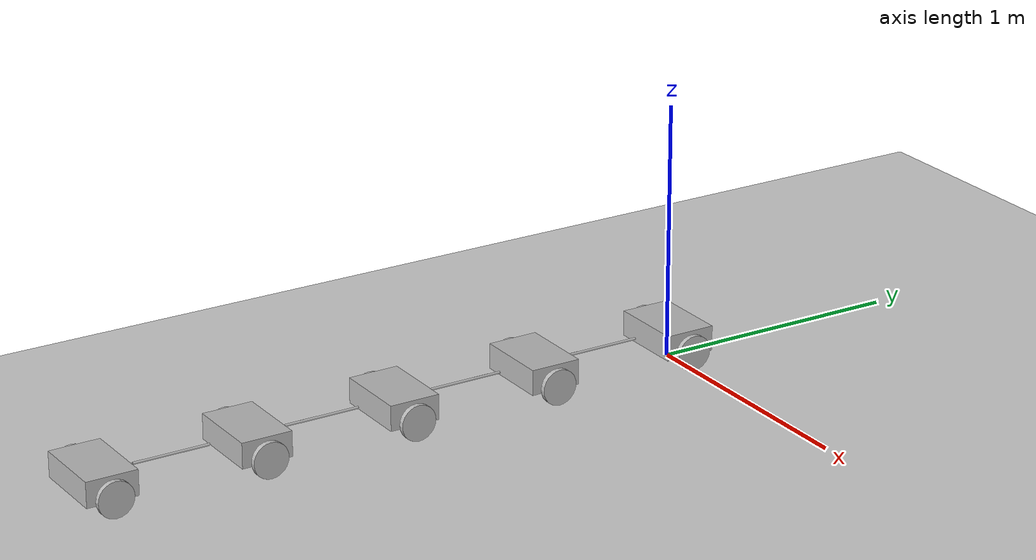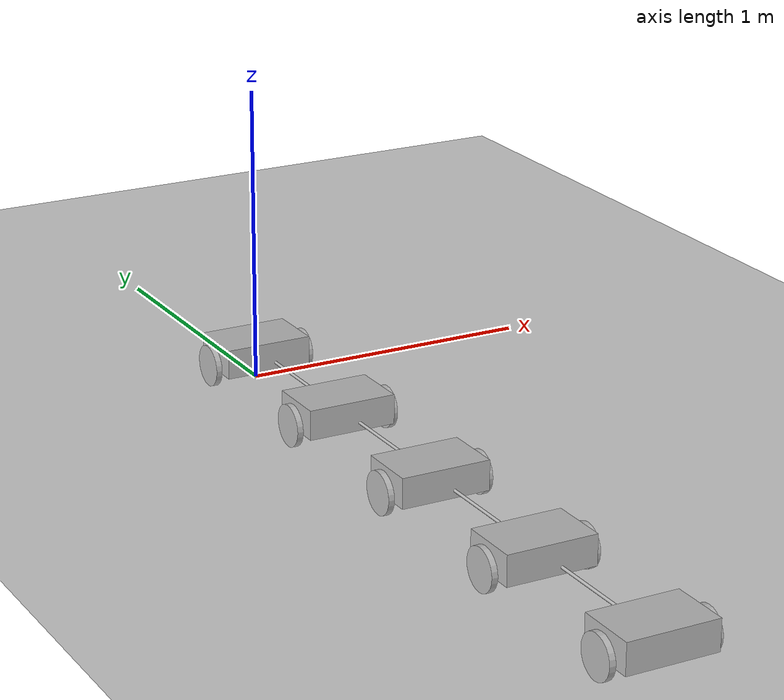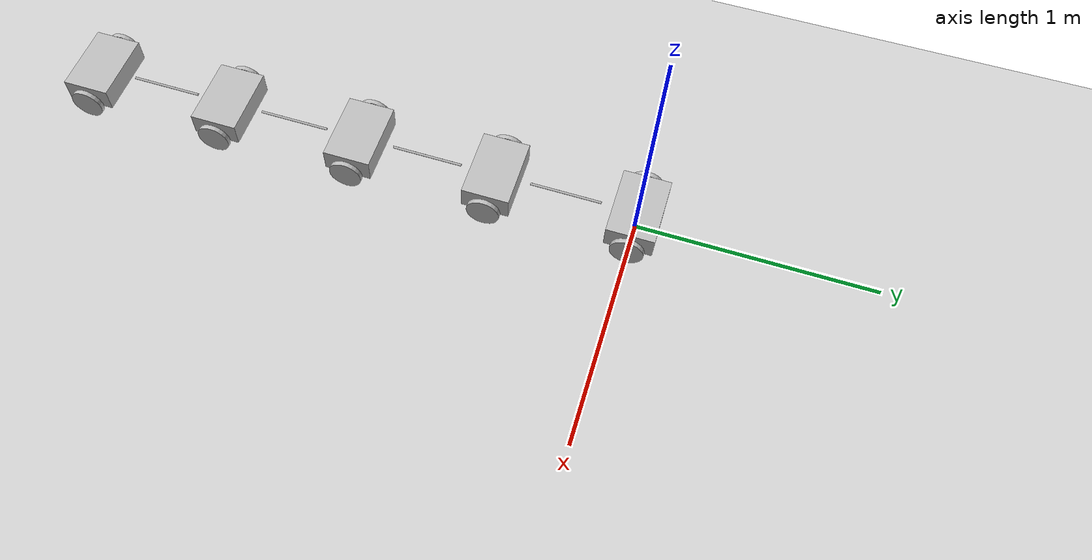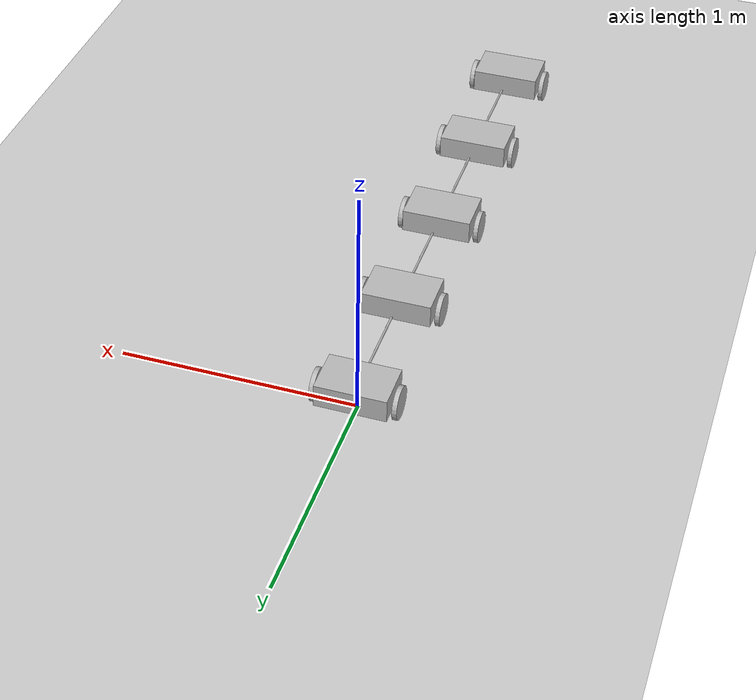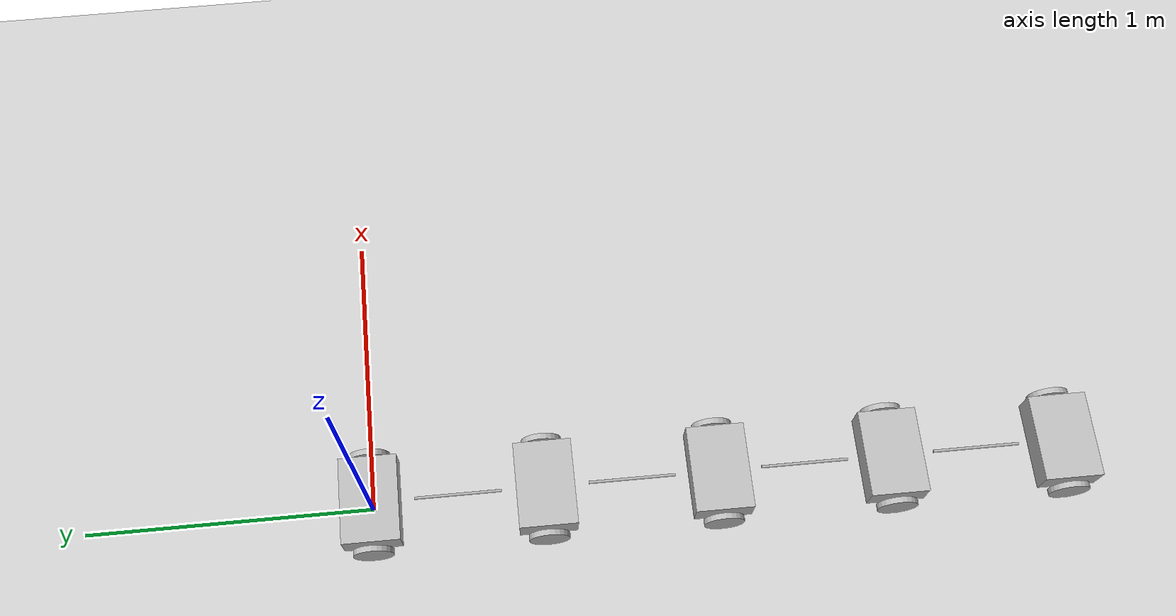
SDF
<sdf version='1.5'>
  <world name='default'>
    <light name='sun' type='directional'>
      <cast_shadows>1</cast_shadows>
      <pose>0 0 10 0 -0 0</pose>
      <diffuse>0.8 0.8 0.8 1</diffuse>
      <specular>0.2 0.2 0.2 1</specular>
      <attenuation>
        <range>1000</range>
        <constant>0.9</constant>
        <linear>0.01</linear>
        <quadratic>0.001</quadratic>
      </attenuation>
      <direction>-0.5 0.1 -0.9</direction>
    </light>
    <model name='ground_plane'>
      <static>1</static>
      <link name='link'>
        <collision name='collision'>
          <geometry>
            <plane>
              <normal>0 0 1</normal>
              <size>100 100</size>
            </plane>
          </geometry>
          <surface>
            <friction>
              <ode>
                <mu>100</mu>
                <mu2>50</mu2>
              </ode>
            </friction>
            <contact>
              <ode/>
            </contact>
            <bounce/>
          </surface>
          <max_contacts>10</max_contacts>
        </collision>
        <visual name='visual'>
          <cast_shadows>0</cast_shadows>
          <geometry>
            <plane>
              <normal>0 0 1</normal>
              <size>100 100</size>
            </plane>
          </geometry>
          <material>
            <script>
              <uri>file://media/materials/scripts/gazebo.material</uri>
              <name>Gazebo/Grey</name>
            </script>
          </material>
        </visual>
        <self_collide>0</self_collide>
        <kinematic>0</kinematic>
        <gravity>1</gravity>
      </link>
    </model>
    <physics type='ode'>
      <max_step_size>0.001</max_step_size>
      <real_time_factor>1</real_time_factor>
      <real_time_update_rate>1000</real_time_update_rate>
      <gravity>0 0 -9.8</gravity>
      <magnetic_field>5.5645e-06 2.28758e-05 -4.23884e-05</magnetic_field>
    </physics>
    <scene>
      <ambient>0.4 0.4 0.4 1</ambient>
      <background>0.7 0.7 0.7 1</background>
      <shadows>1</shadows>
    </scene>
    <model name='train'>
      <link name='car_1::chassis'>
        <pose>0 0 0.1 0 -0 0</pose>
        <inertial>
          <mass>50</mass>
          <inertia>
            <ixx>1</ixx>
            <ixy>0</ixy>
            <ixz>0</ixz>
            <iyy>1</iyy>
            <iyz>0</iyz>
            <izz>1</izz>
          </inertia>
        </inertial>
        <collision name='collision'>
          <geometry>
            <box>
              <size>0.3 0.2 0.1</size>
            </box>
          </geometry>
          <max_contacts>10</max_contacts>
          <surface>
            <contact>
              <ode/>
            </contact>
            <bounce/>
            <friction>
              <ode/>
            </friction>
          </surface>
        </collision>
        <visual name='visual'>
          <geometry>
            <box>
              <size>0.3 0.2 0.1</size>
            </box>
          </geometry>
        </visual>
        <self_collide>0</self_collide>
        <kinematic>0</kinematic>
        <gravity>1</gravity>
      </link>
      <link name='car_1::left_wheel'>
        <pose>-0.17 0 0.07 0 1.5707 0</pose>
        <inertial>
          <mass>10</mass>
          <inertia>
            <ixx>1</ixx>
            <ixy>0</ixy>
            <ixz>0</ixz>
            <iyy>1</iyy>
            <iyz>0</iyz>
            <izz>1</izz>
          </inertia>
        </inertial>
        <collision name='collision'>
          <geometry>
            <cylinder>
              <radius>0.07</radius>
              <length>0.02</length>
            </cylinder>
          </geometry>
          <surface>
            <friction>
              <ode>
                <mu>100000</mu>
                <mu2>100000</mu2>
                <slip1>0</slip1>
                <slip2>0</slip2>
              </ode>
            </friction>
            <contact>
              <ode/>
            </contact>
            <bounce/>
          </surface>
          <max_contacts>10</max_contacts>
        </collision>
        <visual name='visual'>
          <geometry>
            <cylinder>
              <radius>0.07</radius>
              <length>0.02</length>
            </cylinder>
          </geometry>
        </visual>
        <self_collide>0</self_collide>
        <kinematic>0</kinematic>
        <gravity>1</gravity>
      </link>
      <link name='car_1::right_wheel'>
        <pose>0.17 0 0.07 0 1.5707 0</pose>
        <inertial>
          <mass>10</mass>
          <inertia>
            <ixx>1</ixx>
            <ixy>0</ixy>
            <ixz>0</ixz>
            <iyy>1</iyy>
            <iyz>0</iyz>
            <izz>1</izz>
          </inertia>
        </inertial>
        <collision name='collision'>
          <geometry>
            <cylinder>
              <radius>0.07</radius>
              <length>0.02</length>
            </cylinder>
          </geometry>
          <surface>
            <friction>
              <ode>
                <mu>100000</mu>
                <mu2>100000</mu2>
                <slip1>0</slip1>
                <slip2>0</slip2>
              </ode>
            </friction>
            <contact>
              <ode/>
            </contact>
            <bounce/>
          </surface>
          <max_contacts>10</max_contacts>
        </collision>
        <visual name='visual'>
          <geometry>
            <cylinder>
              <radius>0.07</radius>
              <length>0.02</length>
            </cylinder>
          </geometry>
        </visual>
        <self_collide>0</self_collide>
        <kinematic>0</kinematic>
        <gravity>1</gravity>
      </link>
      <joint name='car_1::left_wheel_joint' type='revolute'>
        <child>car_1::left_wheel</child>
        <parent>car_1::chassis</parent>
        <axis>
          <xyz>-1 0 0</xyz>
          <use_parent_model_frame>1</use_parent_model_frame>
          <limit>
            <lower>-1e+16</lower>
            <upper>1e+16</upper>
          </limit>
          <dynamics>
            <spring_reference>0</spring_reference>
            <spring_stiffness>0</spring_stiffness>
          </dynamics>
        </axis>
      </joint>
      <joint name='car_1::right_wheel_joint' type='revolute'>
        <child>car_1::right_wheel</child>
        <parent>car_1::chassis</parent>
        <axis>
          <xyz>-1 0 0</xyz>
          <use_parent_model_frame>1</use_parent_model_frame>
          <limit>
            <lower>-1e+16</lower>
            <upper>1e+16</upper>
          </limit>
          <dynamics>
            <spring_reference>0</spring_reference>
            <spring_stiffness>0</spring_stiffness>
          </dynamics>
        </axis>
      </joint>
      <link name='car_2::chassis'>
        <pose>0 -0.6 0.1 0 -0 0</pose>
        <inertial>
          <mass>50</mass>
          <inertia>
            <ixx>1</ixx>
            <ixy>0</ixy>
            <ixz>0</ixz>
            <iyy>1</iyy>
            <iyz>0</iyz>
            <izz>1</izz>
          </inertia>
        </inertial>
        <collision name='collision'>
          <geometry>
            <box>
              <size>0.3 0.2 0.1</size>
            </box>
          </geometry>
          <max_contacts>10</max_contacts>
          <surface>
            <contact>
              <ode/>
            </contact>
            <bounce/>
            <friction>
              <ode/>
            </friction>
          </surface>
        </collision>
        <visual name='visual'>
          <geometry>
            <box>
              <size>0.3 0.2 0.1</size>
            </box>
          </geometry>
        </visual>
        <self_collide>0</self_collide>
        <kinematic>0</kinematic>
        <gravity>1</gravity>
      </link>
      <link name='car_2::left_wheel'>
        <pose>-0.17 -0.6 0.07 0 1.5707 0</pose>
        <inertial>
          <mass>10</mass>
          <inertia>
            <ixx>1</ixx>
            <ixy>0</ixy>
            <ixz>0</ixz>
            <iyy>1</iyy>
            <iyz>0</iyz>
            <izz>1</izz>
          </inertia>
        </inertial>
        <collision name='collision'>
          <geometry>
            <cylinder>
              <radius>0.07</radius>
              <length>0.02</length>
            </cylinder>
          </geometry>
          <surface>
            <friction>
              <ode>
                <mu>100000</mu>
                <mu2>100000</mu2>
                <slip1>0</slip1>
                <slip2>0</slip2>
              </ode>
            </friction>
            <contact>
              <ode/>
            </contact>
            <bounce/>
          </surface>
          <max_contacts>10</max_contacts>
        </collision>
        <visual name='visual'>
          <geometry>
            <cylinder>
              <radius>0.07</radius>
              <length>0.02</length>
            </cylinder>
          </geometry>
        </visual>
        <self_collide>0</self_collide>
        <kinematic>0</kinematic>
        <gravity>1</gravity>
      </link>
      <link name='car_2::right_wheel'>
        <pose>0.17 -0.6 0.07 0 1.5707 0</pose>
        <inertial>
          <mass>10</mass>
          <inertia>
            <ixx>1</ixx>
            <ixy>0</ixy>
            <ixz>0</ixz>
            <iyy>1</iyy>
            <iyz>0</iyz>
            <izz>1</izz>
          </inertia>
        </inertial>
        <collision name='collision'>
          <geometry>
            <cylinder>
              <radius>0.07</radius>
              <length>0.02</length>
            </cylinder>
          </geometry>
          <surface>
            <friction>
              <ode>
                <mu>100000</mu>
                <mu2>100000</mu2>
                <slip1>0</slip1>
                <slip2>0</slip2>
              </ode>
            </friction>
            <contact>
              <ode/>
            </contact>
            <bounce/>
          </surface>
          <max_contacts>10</max_contacts>
        </collision>
        <visual name='visual'>
          <geometry>
            <cylinder>
              <radius>0.07</radius>
              <length>0.02</length>
            </cylinder>
          </geometry>
        </visual>
        <self_collide>0</self_collide>
        <kinematic>0</kinematic>
        <gravity>1</gravity>
      </link>
      <joint name='car_2::left_wheel_joint' type='revolute'>
        <child>car_2::left_wheel</child>
        <parent>car_2::chassis</parent>
        <axis>
          <xyz>-1 0 0</xyz>
          <use_parent_model_frame>1</use_parent_model_frame>
          <limit>
            <lower>-1e+16</lower>
            <upper>1e+16</upper>
          </limit>
          <dynamics>
            <spring_reference>0</spring_reference>
            <spring_stiffness>0</spring_stiffness>
          </dynamics>
        </axis>
      </joint>
      <joint name='car_2::right_wheel_joint' type='revolute'>
        <child>car_2::right_wheel</child>
        <parent>car_2::chassis</parent>
        <axis>
          <xyz>-1 0 0</xyz>
          <use_parent_model_frame>1</use_parent_model_frame>
          <limit>
            <lower>-1e+16</lower>
            <upper>1e+16</upper>
          </limit>
          <dynamics>
            <spring_reference>0</spring_reference>
            <spring_stiffness>0</spring_stiffness>
          </dynamics>
        </axis>
      </joint>
      <link name='car_3::chassis'>
        <pose>0 -1.2 0.1 0 -0 0</pose>
        <inertial>
          <mass>50</mass>
          <inertia>
            <ixx>1</ixx>
            <ixy>0</ixy>
            <ixz>0</ixz>
            <iyy>1</iyy>
            <iyz>0</iyz>
            <izz>1</izz>
          </inertia>
        </inertial>
        <collision name='collision'>
          <geometry>
            <box>
              <size>0.3 0.2 0.1</size>
            </box>
          </geometry>
          <max_contacts>10</max_contacts>
          <surface>
            <contact>
              <ode/>
            </contact>
            <bounce/>
            <friction>
              <ode/>
            </friction>
          </surface>
        </collision>
        <visual name='visual'>
          <geometry>
            <box>
              <size>0.3 0.2 0.1</size>
            </box>
          </geometry>
        </visual>
        <self_collide>0</self_collide>
        <kinematic>0</kinematic>
        <gravity>1</gravity>
      </link>
      <link name='car_3::left_wheel'>
        <pose>-0.17 -1.2 0.07 0 1.5707 0</pose>
        <inertial>
          <mass>10</mass>
          <inertia>
            <ixx>1</ixx>
            <ixy>0</ixy>
            <ixz>0</ixz>
            <iyy>1</iyy>
            <iyz>0</iyz>
            <izz>1</izz>
          </inertia>
        </inertial>
        <collision name='collision'>
          <geometry>
            <cylinder>
              <radius>0.07</radius>
              <length>0.02</length>
            </cylinder>
          </geometry>
          <surface>
            <friction>
              <ode>
                <mu>100000</mu>
                <mu2>100000</mu2>
                <slip1>0</slip1>
                <slip2>0</slip2>
              </ode>
            </friction>
            <contact>
              <ode/>
            </contact>
            <bounce/>
          </surface>
          <max_contacts>10</max_contacts>
        </collision>
        <visual name='visual'>
          <geometry>
            <cylinder>
              <radius>0.07</radius>
              <length>0.02</length>
            </cylinder>
          </geometry>
        </visual>
        <self_collide>0</self_collide>
        <kinematic>0</kinematic>
        <gravity>1</gravity>
      </link>
      <link name='car_3::right_wheel'>
        <pose>0.17 -1.2 0.07 0 1.5707 0</pose>
        <inertial>
          <mass>10</mass>
          <inertia>
            <ixx>1</ixx>
            <ixy>0</ixy>
            <ixz>0</ixz>
            <iyy>1</iyy>
            <iyz>0</iyz>
            <izz>1</izz>
          </inertia>
        </inertial>
        <collision name='collision'>
          <geometry>
            <cylinder>
              <radius>0.07</radius>
              <length>0.02</length>
            </cylinder>
          </geometry>
          <surface>
            <friction>
              <ode>
                <mu>100000</mu>
                <mu2>100000</mu2>
                <slip1>0</slip1>
                <slip2>0</slip2>
              </ode>
            </friction>
            <contact>
              <ode/>
            </contact>
            <bounce/>
          </surface>
          <max_contacts>10</max_contacts>
        </collision>
        <visual name='visual'>
          <geometry>
            <cylinder>
              <radius>0.07</radius>
              <length>0.02</length>
            </cylinder>
          </geometry>
        </visual>
        <self_collide>0</self_collide>
        <kinematic>0</kinematic>
        <gravity>1</gravity>
      </link>
      <joint name='car_3::left_wheel_joint' type='revolute'>
        <child>car_3::left_wheel</child>
        <parent>car_3::chassis</parent>
        <axis>
          <xyz>-1 0 0</xyz>
          <use_parent_model_frame>1</use_parent_model_frame>
          <limit>
            <lower>-1e+16</lower>
            <upper>1e+16</upper>
          </limit>
          <dynamics>
            <spring_reference>0</spring_reference>
            <spring_stiffness>0</spring_stiffness>
          </dynamics>
        </axis>
      </joint>
      <joint name='car_3::right_wheel_joint' type='revolute'>
        <child>car_3::right_wheel</child>
        <parent>car_3::chassis</parent>
        <axis>
          <xyz>-1 0 0</xyz>
          <use_parent_model_frame>1</use_parent_model_frame>
          <limit>
            <lower>-1e+16</lower>
            <upper>1e+16</upper>
          </limit>
          <dynamics>
            <spring_reference>0</spring_reference>
            <spring_stiffness>0</spring_stiffness>
          </dynamics>
        </axis>
      </joint>
      <link name='car_4::chassis'>
        <pose>0 -1.8 0.1 0 -0 0</pose>
        <inertial>
          <mass>50</mass>
          <inertia>
            <ixx>1</ixx>
            <ixy>0</ixy>
            <ixz>0</ixz>
            <iyy>1</iyy>
            <iyz>0</iyz>
            <izz>1</izz>
          </inertia>
        </inertial>
        <collision name='collision'>
          <geometry>
            <box>
              <size>0.3 0.2 0.1</size>
            </box>
          </geometry>
          <max_contacts>10</max_contacts>
          <surface>
            <contact>
              <ode/>
            </contact>
            <bounce/>
            <friction>
              <ode/>
            </friction>
          </surface>
        </collision>
        <visual name='visual'>
          <geometry>
            <box>
              <size>0.3 0.2 0.1</size>
            </box>
          </geometry>
        </visual>
        <self_collide>0</self_collide>
        <kinematic>0</kinematic>
        <gravity>1</gravity>
      </link>
      <link name='car_4::left_wheel'>
        <pose>-0.17 -1.8 0.07 0 1.5707 0</pose>
        <inertial>
          <mass>10</mass>
          <inertia>
            <ixx>1</ixx>
            <ixy>0</ixy>
            <ixz>0</ixz>
            <iyy>1</iyy>
            <iyz>0</iyz>
            <izz>1</izz>
          </inertia>
        </inertial>
        <collision name='collision'>
          <geometry>
            <cylinder>
              <radius>0.07</radius>
              <length>0.02</length>
            </cylinder>
          </geometry>
          <surface>
            <friction>
              <ode>
                <mu>100000</mu>
                <mu2>100000</mu2>
                <slip1>0</slip1>
                <slip2>0</slip2>
              </ode>
            </friction>
            <contact>
              <ode/>
            </contact>
            <bounce/>
          </surface>
          <max_contacts>10</max_contacts>
        </collision>
        <visual name='visual'>
          <geometry>
            <cylinder>
              <radius>0.07</radius>
              <length>0.02</length>
            </cylinder>
          </geometry>
        </visual>
        <self_collide>0</self_collide>
        <kinematic>0</kinematic>
        <gravity>1</gravity>
      </link>
      <link name='car_4::right_wheel'>
        <pose>0.17 -1.8 0.07 0 1.5707 0</pose>
        <inertial>
          <mass>10</mass>
          <inertia>
            <ixx>1</ixx>
            <ixy>0</ixy>
            <ixz>0</ixz>
            <iyy>1</iyy>
            <iyz>0</iyz>
            <izz>1</izz>
          </inertia>
        </inertial>
        <collision name='collision'>
          <geometry>
            <cylinder>
              <radius>0.07</radius>
              <length>0.02</length>
            </cylinder>
          </geometry>
          <surface>
            <friction>
              <ode>
                <mu>100000</mu>
                <mu2>100000</mu2>
                <slip1>0</slip1>
                <slip2>0</slip2>
              </ode>
            </friction>
            <contact>
              <ode/>
            </contact>
            <bounce/>
          </surface>
          <max_contacts>10</max_contacts>
        </collision>
        <visual name='visual'>
          <geometry>
            <cylinder>
              <radius>0.07</radius>
              <length>0.02</length>
            </cylinder>
          </geometry>
        </visual>
        <self_collide>0</self_collide>
        <kinematic>0</kinematic>
        <gravity>1</gravity>
      </link>
      <joint name='car_4::left_wheel_joint' type='revolute'>
        <child>car_4::left_wheel</child>
        <parent>car_4::chassis</parent>
        <axis>
          <xyz>-1 0 0</xyz>
          <use_parent_model_frame>1</use_parent_model_frame>
          <limit>
            <lower>-1e+16</lower>
            <upper>1e+16</upper>
          </limit>
          <dynamics>
            <spring_reference>0</spring_reference>
            <spring_stiffness>0</spring_stiffness>
          </dynamics>
        </axis>
      </joint>
      <joint name='car_4::right_wheel_joint' type='revolute'>
        <child>car_4::right_wheel</child>
        <parent>car_4::chassis</parent>
        <axis>
          <xyz>-1 0 0</xyz>
          <use_parent_model_frame>1</use_parent_model_frame>
          <limit>
            <lower>-1e+16</lower>
            <upper>1e+16</upper>
          </limit>
          <dynamics>
            <spring_reference>0</spring_reference>
            <spring_stiffness>0</spring_stiffness>
          </dynamics>
        </axis>
      </joint>
      <link name='car_5::chassis'>
        <pose>0 -2.4 0.1 0 -0 0</pose>
        <inertial>
          <mass>50</mass>
          <inertia>
            <ixx>1</ixx>
            <ixy>0</ixy>
            <ixz>0</ixz>
            <iyy>1</iyy>
            <iyz>0</iyz>
            <izz>1</izz>
          </inertia>
        </inertial>
        <collision name='collision'>
          <geometry>
            <box>
              <size>0.3 0.2 0.1</size>
            </box>
          </geometry>
          <max_contacts>10</max_contacts>
          <surface>
            <contact>
              <ode/>
            </contact>
            <bounce/>
            <friction>
              <ode/>
            </friction>
          </surface>
        </collision>
        <visual name='visual'>
          <geometry>
            <box>
              <size>0.3 0.2 0.1</size>
            </box>
          </geometry>
        </visual>
        <self_collide>0</self_collide>
        <kinematic>0</kinematic>
        <gravity>1</gravity>
      </link>
      <link name='car_5::left_wheel'>
        <pose>-0.17 -2.4 0.07 0 1.5707 0</pose>
        <inertial>
          <mass>10</mass>
          <inertia>
            <ixx>1</ixx>
            <ixy>0</ixy>
            <ixz>0</ixz>
            <iyy>1</iyy>
            <iyz>0</iyz>
            <izz>1</izz>
          </inertia>
        </inertial>
        <collision name='collision'>
          <geometry>
            <cylinder>
              <radius>0.07</radius>
              <length>0.02</length>
            </cylinder>
          </geometry>
          <surface>
            <friction>
              <ode>
                <mu>100000</mu>
                <mu2>100000</mu2>
                <slip1>0</slip1>
                <slip2>0</slip2>
              </ode>
            </friction>
            <contact>
              <ode/>
            </contact>
            <bounce/>
          </surface>
          <max_contacts>10</max_contacts>
        </collision>
        <visual name='visual'>
          <geometry>
            <cylinder>
              <radius>0.07</radius>
              <length>0.02</length>
            </cylinder>
          </geometry>
        </visual>
        <self_collide>0</self_collide>
        <kinematic>0</kinematic>
        <gravity>1</gravity>
      </link>
      <link name='car_5::right_wheel'>
        <pose>0.17 -2.4 0.07 0 1.5707 0</pose>
        <inertial>
          <mass>10</mass>
          <inertia>
            <ixx>1</ixx>
            <ixy>0</ixy>
            <ixz>0</ixz>
            <iyy>1</iyy>
            <iyz>0</iyz>
            <izz>1</izz>
          </inertia>
        </inertial>
        <collision name='collision'>
          <geometry>
            <cylinder>
              <radius>0.07</radius>
              <length>0.02</length>
            </cylinder>
          </geometry>
          <surface>
            <friction>
              <ode>
                <mu>100000</mu>
                <mu2>100000</mu2>
                <slip1>0</slip1>
                <slip2>0</slip2>
              </ode>
            </friction>
            <contact>
              <ode/>
            </contact>
            <bounce/>
          </surface>
          <max_contacts>10</max_contacts>
        </collision>
        <visual name='visual'>
          <geometry>
            <cylinder>
              <radius>0.07</radius>
              <length>0.02</length>
            </cylinder>
          </geometry>
        </visual>
        <self_collide>0</self_collide>
        <kinematic>0</kinematic>
        <gravity>1</gravity>
      </link>
      <joint name='car_5::left_wheel_joint' type='revolute'>
        <child>car_5::left_wheel</child>
        <parent>car_5::chassis</parent>
        <axis>
          <xyz>-1 0 0</xyz>
          <use_parent_model_frame>1</use_parent_model_frame>
          <limit>
            <lower>-1e+16</lower>
            <upper>1e+16</upper>
          </limit>
          <dynamics>
            <spring_reference>0</spring_reference>
            <spring_stiffness>0</spring_stiffness>
          </dynamics>
        </axis>
      </joint>
      <joint name='car_5::right_wheel_joint' type='revolute'>
        <child>car_5::right_wheel</child>
        <parent>car_5::chassis</parent>
        <axis>
          <xyz>-1 0 0</xyz>
          <use_parent_model_frame>1</use_parent_model_frame>
          <limit>
            <lower>-1e+16</lower>
            <upper>1e+16</upper>
          </limit>
          <dynamics>
            <spring_reference>0</spring_reference>
            <spring_stiffness>0</spring_stiffness>
          </dynamics>
        </axis>
      </joint>
      <link name='connection_1'>
        <pose>0 -0.3 0.1 1.5707 -0 0</pose>
        <visual name='visual'>
          <geometry>
            <cylinder>
              <radius>0.005</radius>
              <length>0.3</length>
            </cylinder>
          </geometry>
        </visual>
        <self_collide>0</self_collide>
        <inertial>
          <inertia>
            <ixx>1</ixx>
            <ixy>0</ixy>
            <ixz>0</ixz>
            <iyy>1</iyy>
            <iyz>0</iyz>
            <izz>1</izz>
          </inertia>
          <mass>1</mass>
        </inertial>
        <kinematic>0</kinematic>
        <gravity>1</gravity>
      </link>
      <link name='connection_2'>
        <pose>0 -0.9 0.1 1.5707 -0 0</pose>
        <visual name='visual'>
          <geometry>
            <cylinder>
              <radius>0.005</radius>
              <length>0.3</length>
            </cylinder>
          </geometry>
        </visual>
        <self_collide>0</self_collide>
        <inertial>
          <inertia>
            <ixx>1</ixx>
            <ixy>0</ixy>
            <ixz>0</ixz>
            <iyy>1</iyy>
            <iyz>0</iyz>
            <izz>1</izz>
          </inertia>
          <mass>1</mass>
        </inertial>
        <kinematic>0</kinematic>
        <gravity>1</gravity>
      </link>
      <link name='connection_3'>
        <pose>0 -1.5 0.1 1.5707 -0 0</pose>
        <visual name='visual'>
          <geometry>
            <cylinder>
              <radius>0.005</radius>
              <length>0.3</length>
            </cylinder>
          </geometry>
        </visual>
        <self_collide>0</self_collide>
        <inertial>
          <inertia>
            <ixx>1</ixx>
            <ixy>0</ixy>
            <ixz>0</ixz>
            <iyy>1</iyy>
            <iyz>0</iyz>
            <izz>1</izz>
          </inertia>
          <mass>1</mass>
        </inertial>
        <kinematic>0</kinematic>
        <gravity>1</gravity>
      </link>
      <link name='connection_4'>
        <pose>0 -2.1 0.1 1.5707 -0 0</pose>
        <visual name='visual'>
          <geometry>
            <cylinder>
              <radius>0.005</radius>
              <length>0.3</length>
            </cylinder>
          </geometry>
        </visual>
        <self_collide>0</self_collide>
        <inertial>
          <inertia>
            <ixx>1</ixx>
            <ixy>0</ixy>
            <ixz>0</ixz>
            <iyy>1</iyy>
            <iyz>0</iyz>
            <izz>1</izz>
          </inertia>
          <mass>1</mass>
        </inertial>
        <kinematic>0</kinematic>
        <gravity>1</gravity>
      </link>
      <joint name='car_con_1' type='revolute'>
        <pose>0 0 -0.15 0 -0 0</pose>
        <child>car_1::chassis</child>
        <parent>connection_1</parent>
        <axis>
          <xyz>0 0 1</xyz>
          <use_parent_model_frame>1</use_parent_model_frame>
          <limit>
            <lower>-0.52</lower>
            <upper>0.52</upper>
          </limit>
          <use_parent_model_frame>1</use_parent_model_frame>
          <dynamics>
            <spring_reference>0</spring_reference>
            <spring_stiffness>0</spring_stiffness>
          </dynamics>
        </axis>
      </joint>
      <joint name='car_con_2' type='revolute'>
        <pose>0 0 0.15 0 -0 0</pose>
        <child>car_2::chassis</child>
        <parent>connection_1</parent>
        <axis>
          <xyz>0 0 1</xyz>
          <use_parent_model_frame>1</use_parent_model_frame>
          <limit>
            <lower>-0.52</lower>
            <upper>0.52</upper>
          </limit>
          <use_parent_model_frame>1</use_parent_model_frame>
          <dynamics>
            <spring_reference>0</spring_reference>
            <spring_stiffness>0</spring_stiffness>
          </dynamics>
        </axis>
      </joint>
      <joint name='car_con_3' type='revolute'>
        <pose>0 0 -0.15 0 -0 0</pose>
        <child>car_2::chassis</child>
        <parent>connection_2</parent>
        <axis>
          <xyz>0 0 1</xyz>
          <use_parent_model_frame>1</use_parent_model_frame>
          <limit>
            <lower>-0.52</lower>
            <upper>0.52</upper>
          </limit>
          <use_parent_model_frame>1</use_parent_model_frame>
          <dynamics>
            <spring_reference>0</spring_reference>
            <spring_stiffness>0</spring_stiffness>
          </dynamics>
        </axis>
      </joint>
      <joint name='car_con_4' type='revolute'>
        <pose>0 0 0.15 0 -0 0</pose>
        <child>car_3::chassis</child>
        <parent>connection_2</parent>
        <axis>
          <xyz>0 0 1</xyz>
          <use_parent_model_frame>1</use_parent_model_frame>
          <limit>
            <lower>-0.52</lower>
            <upper>0.52</upper>
          </limit>
          <use_parent_model_frame>1</use_parent_model_frame>
          <dynamics>
            <spring_reference>0</spring_reference>
            <spring_stiffness>0</spring_stiffness>
          </dynamics>
        </axis>
      </joint>
      <joint name='car_con_5' type='revolute'>
        <pose>0 0 -0.15 0 -0 0</pose>
        <child>car_3::chassis</child>
        <parent>connection_3</parent>
        <axis>
          <xyz>0 0 1</xyz>
          <use_parent_model_frame>1</use_parent_model_frame>
          <limit>
            <lower>-0.52</lower>
            <upper>0.52</upper>
          </limit>
          <use_parent_model_frame>1</use_parent_model_frame>
          <dynamics>
            <spring_reference>0</spring_reference>
            <spring_stiffness>0</spring_stiffness>
          </dynamics>
        </axis>
      </joint>
      <joint name='car_con_6' type='revolute'>
        <pose>0 0 0.15 0 -0 0</pose>
        <child>car_4::chassis</child>
        <parent>connection_3</parent>
        <axis>
          <xyz>0 0 1</xyz>
          <use_parent_model_frame>1</use_parent_model_frame>
          <limit>
            <lower>-0.52</lower>
            <upper>0.52</upper>
          </limit>
          <use_parent_model_frame>1</use_parent_model_frame>
          <dynamics>
            <spring_reference>0</spring_reference>
            <spring_stiffness>0</spring_stiffness>
          </dynamics>
        </axis>
      </joint>
      <joint name='car_con_7' type='revolute'>
        <pose>0 0 -0.15 0 -0 0</pose>
        <child>car_4::chassis</child>
        <parent>connection_4</parent>
        <axis>
          <xyz>0 0 1</xyz>
          <use_parent_model_frame>1</use_parent_model_frame>
          <limit>
            <lower>-0.52</lower>
            <upper>0.52</upper>
          </limit>
          <use_parent_model_frame>1</use_parent_model_frame>
          <dynamics>
            <spring_reference>0</spring_reference>
            <spring_stiffness>0</spring_stiffness>
          </dynamics>
        </axis>
      </joint>
      <joint name='car_con_8' type='revolute'>
        <pose>0 0 0.15 0 -0 0</pose>
        <child>car_5::chassis</child>
        <parent>connection_4</parent>
        <axis>
          <xyz>0 0 1</xyz>
          <use_parent_model_frame>1</use_parent_model_frame>
          <limit>
            <lower>-0.52</lower>
            <upper>0.52</upper>
          </limit>
          <use_parent_model_frame>1</use_parent_model_frame>
          <dynamics>
            <spring_reference>0</spring_reference>
            <spring_stiffness>0</spring_stiffness>
          </dynamics>
        </axis>
      </joint>
      <pose>0 0 0 0 -0 0</pose>
    </model>
    <gui fullscreen='0'>
      <camera name='user_camera'>
        <pose>10.1282 -5.39937 7.84663 0 0.579643 2.44019</pose>
        <view_controller>orbit</view_controller>
      </camera>
    </gui>
  </world>
</sdf>
